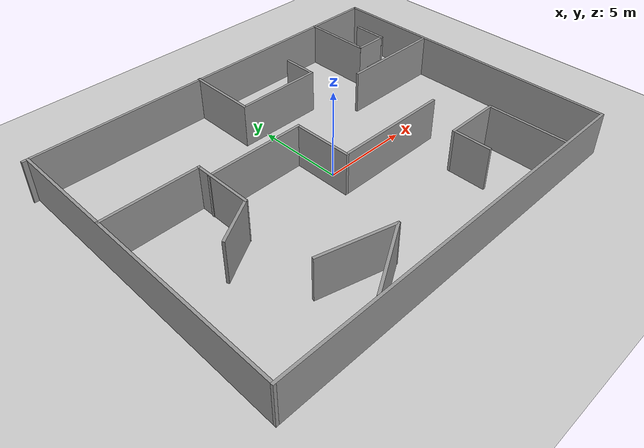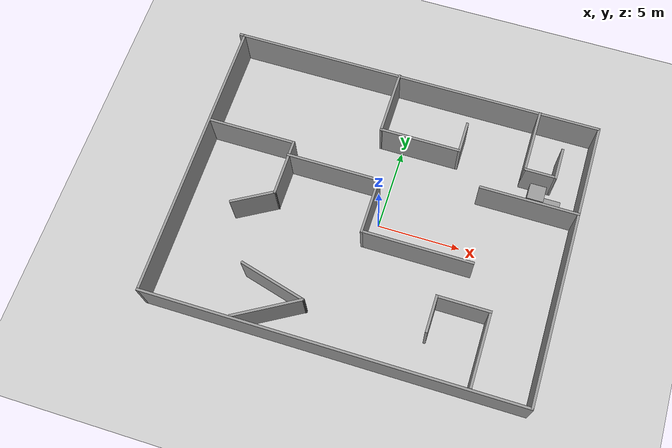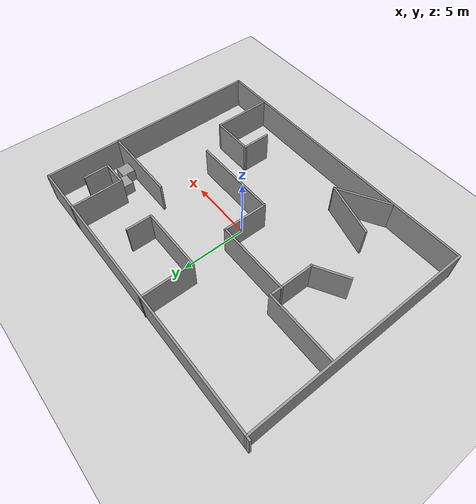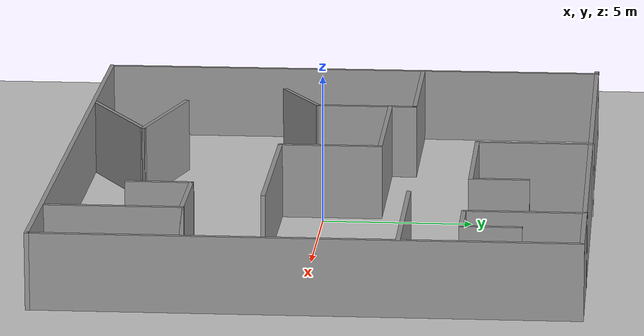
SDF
<sdf version="1.7">
 <world name="default">
  <light name="sun" type="directional">
   <pose>0 0 10 0 -0 0</pose>
   <diffuse>0.8 0.8 0.8 1</diffuse>
   <specular>0.2 0.2 0.2 1</specular>
   <attenuation>
    <range>1000</range>
    <constant>0.9</constant>
    <linear>0.01</linear>
    <quadratic>0.001</quadratic>
   </attenuation>
   <direction>-0.5 0.1 -0.9</direction>
   <spot><inner_angle>0</inner_angle><outer_angle>0</outer_angle><falloff>0</falloff></spot>
  </light>
  <model name="ground_plane">
   <static>1</static>
   <link name="link">
    <collision name="collision">
     <geometry><plane><normal>0 0 1</normal><size>100 100</size></plane></geometry>
     <surface><friction><ode><mu>100</mu><mu2>50</mu2></ode></friction></surface>
    </collision>
    <visual name="visual">
     <cast_shadows>0</cast_shadows>
     <geometry><plane><normal>0 0 1</normal><size>100 100</size></plane></geometry>
     <material>
      <script><uri>file://media/materials/scripts/gazebo.material</uri><name>Gazebo/Grey</name></script>
     </material>
    </visual>
   </link>
  </model>
  <gravity>0 0 -9.8</gravity>
  <magnetic_field>6e-06 2.3e-05 -4.2e-05</magnetic_field>
  <atmosphere type="adiabatic"/>
  <physics type="ode">
   <max_step_size>0.001</max_step_size>
   <real_time_factor>1</real_time_factor>
   <real_time_update_rate>1000</real_time_update_rate>
  </physics>
  <scene><ambient>0.4 0.4 0.4 1</ambient><background>0.7 0.7 0.7 1</background><shadows>1</shadows></scene>
  <audio><device>default</device></audio>
  <spherical_coordinates>
   <surface_model>EARTH_WGS84</surface_model>
   <latitude_deg>0</latitude_deg>
   <longitude_deg>0</longitude_deg>
   <elevation>0</elevation>
   <heading_deg>0</heading_deg>
  </spherical_coordinates>
  <model name="playground">
   <pose>-0.331229 0.25121 0 0 -0 0</pose>
   <link name="Wall_10">
    <collision name="Wall_10_Collision">
     <geometry><box><size>23 0.15 2.5</size></box></geometry>
     <pose>0 0 1.25 0 -0 0</pose>
    </collision>
    <visual name="Wall_10_Visual">
     <pose>0 0 1.25 0 -0 0</pose>
     <geometry><box><size>23 0.15 2.5</size></box></geometry>
     <material>
      <script><uri>file://media/materials/scripts/gazebo.material</uri><name>Gazebo/Grey</name></script>
      <ambient>1 1 1 1</ambient>
     </material>
     <meta><layer>0</layer></meta>
    </visual>
    <pose>-1e-06 8.65231 0 0 -0 0</pose>
   </link>
   <link name="Wall_11">
    <collision name="Wall_11_Collision">
     <geometry><box><size>17.5 0.15 2.5</size></box></geometry>
     <pose>0 0 1.25 0 -0 0</pose>
    </collision>
    <visual name="Wall_11_Visual">
     <pose>0 0 1.25 0 -0 0</pose>
     <geometry><box><size>17.5 0.15 2.5</size></box></geometry>
     <material>
      <script><uri>file://media/materials/scripts/gazebo.material</uri><name>Gazebo/Grey</name></script>
      <ambient>1 1 1 1</ambient>
     </material>
     <meta><layer>0</layer></meta>
    </visual>
    <pose>11.425 -0.022689 0 0 -0 -1.5708</pose>
   </link>
   <link name="Wall_12">
    <collision name="Wall_12_Collision">
     <geometry><box><size>22.75 0.15 2.5</size></box></geometry>
     <pose>0 0 1.25 0 -0 0</pose>
    </collision>
    <visual name="Wall_12_Visual">
     <pose>0 0 1.25 0 -0 0</pose>
     <geometry><box><size>22.75 0.15 2.5</size></box></geometry>
     <material>
      <script><uri>file://media/materials/scripts/gazebo.material</uri><name>Gazebo/Grey</name></script>
      <ambient>1 1 1 1</ambient>
     </material>
     <meta><layer>0</layer></meta>
    </visual>
    <pose>0.124999 -8.69769 0 0 -0 3.14159</pose>
   </link>
   <link name="Wall_13">
    <collision name="Wall_13_Collision">
     <geometry><box><size>17.5 0.15 2.5</size></box></geometry>
     <pose>0 0 1.25 0 -0 0</pose>
    </collision>
    <visual name="Wall_13_Visual">
     <pose>0 0 1.25 0 -0 0</pose>
     <geometry><box><size>17.5 0.15 2.5</size></box></geometry>
     <material>
      <script><uri>file://media/materials/scripts/gazebo.material</uri><name>Gazebo/Grey</name></script>
      <ambient>1 1 1 1</ambient>
     </material>
     <meta><layer>0</layer></meta>
    </visual>
    <pose>-11.175 -0.022689 0 0 -0 1.5708</pose>
   </link>
   <link name="Wall_15">
    <collision name="Wall_15_Collision">
     <geometry><box><size>4 0.15 2.5</size></box></geometry>
     <pose>0 0 1.25 0 -0 0</pose>
    </collision>
    <visual name="Wall_15_Visual">
     <pose>0 0 1.25 0 -0 0</pose>
     <geometry><box><size>4 0.15 2.5</size></box></geometry>
     <material>
      <script><uri>file://media/materials/scripts/gazebo.material</uri><name>Gazebo/Grey</name></script>
      <ambient>1 1 1 1</ambient>
     </material>
     <meta><layer>0</layer></meta>
    </visual>
    <pose>7.79704 6.73751 0 0 -0 -1.5708</pose>
   </link>
   <link name="Wall_16">
    <collision name="Wall_16_Collision">
     <geometry><box><size>2 0.15 2.5</size></box></geometry>
     <pose>0 0 1.25 0 -0 0</pose>
    </collision>
    <visual name="Wall_16_Visual">
     <pose>0 0 1.25 0 -0 0</pose>
     <geometry><box><size>2 0.15 2.5</size></box></geometry>
     <material>
      <script><uri>file://media/materials/scripts/gazebo.material</uri><name>Gazebo/Grey</name></script>
      <ambient>1 1 1 1</ambient>
     </material>
     <meta><layer>0</layer></meta>
    </visual>
    <pose>8.72204 4.81251 0 0 -0 0</pose>
   </link>
   <link name="Wall_17">
    <collision name="Wall_17_Collision">
     <geometry><box><size>2 0.15 2.5</size></box></geometry>
     <pose>0 0 1.25 0 -0 0</pose>
    </collision>
    <visual name="Wall_17_Visual">
     <pose>0 0 1.25 0 -0 0</pose>
     <geometry><box><size>2 0.15 2.5</size></box></geometry>
     <material>
      <script><uri>file://media/materials/scripts/gazebo.material</uri><name>Gazebo/Grey</name></script>
      <ambient>1 1 1 1</ambient>
     </material>
     <meta><layer>0</layer></meta>
    </visual>
    <pose>9.64704 5.73751 0 0 -0 1.5708</pose>
   </link>
   <link name="Wall_19">
    <collision name="Wall_19_Collision">
     <geometry><box><size>6 0.15 2.5</size></box></geometry>
     <pose>0 0 1.25 0 -0 0</pose>
    </collision>
    <visual name="Wall_19_Visual">
     <pose>0 0 1.25 0 -0 0</pose>
     <geometry><box><size>6 0.15 2.5</size></box></geometry>
     <material>
      <script><uri>file://media/materials/scripts/gazebo.material</uri><name>Gazebo/Grey</name></script>
      <ambient>1 1 1 1</ambient>
     </material>
     <meta><layer>0</layer></meta>
    </visual>
    <pose>8.49545 2.92837 0 0 -0 3.14159</pose>
   </link>
   <link name="Wall_23">
    <collision name="Wall_23_Collision">
     <geometry><box><size>4.5 0.15 2.5</size></box></geometry>
     <pose>0 0 1.25 0 -0 0</pose>
    </collision>
    <visual name="Wall_23_Visual">
     <pose>0 0 1.25 0 -0 0</pose>
     <geometry><box><size>4.5 0.15 2.5</size></box></geometry>
     <material>
      <script><uri>file://media/materials/scripts/gazebo.material</uri><name>Gazebo/Grey</name></script>
      <ambient>1 1 1 1</ambient>
     </material>
     <meta><layer>0</layer></meta>
    </visual>
    <pose>8.00811 -6.3649 0 0 -0 1.5708</pose>
   </link>
   <link name="Wall_24">
    <collision name="Wall_24_Collision">
     <geometry><box><size>3.25 0.15 2.5</size></box></geometry>
     <pose>0 0 1.25 0 -0 0</pose>
    </collision>
    <visual name="Wall_24_Visual">
     <pose>0 0 1.25 0 -0 0</pose>
     <geometry><box><size>3.25 0.15 2.5</size></box></geometry>
     <material>
      <script><uri>file://media/materials/scripts/gazebo.material</uri><name>Gazebo/Grey</name></script>
      <ambient>1 1 1 1</ambient>
     </material>
     <meta><layer>0</layer></meta>
    </visual>
    <pose>6.45811 -4.18991 0 0 -0 3.14159</pose>
   </link>
   <link name="Wall_25">
    <collision name="Wall_25_Collision">
     <geometry><box><size>2.25 0.15 2.5</size></box></geometry>
     <pose>0 0 1.25 0 -0 0</pose>
    </collision>
    <visual name="Wall_25_Visual">
     <pose>0 0 1.25 0 -0 0</pose>
     <geometry><box><size>2.25 0.15 2.5</size></box></geometry>
     <material>
      <script><uri>file://media/materials/scripts/gazebo.material</uri><name>Gazebo/Grey</name></script>
      <ambient>1 1 1 1</ambient>
     </material>
     <meta><layer>0</layer></meta>
    </visual>
    <pose>4.90811 -5.2399 0 0 -0 -1.5708</pose>
   </link>
   <link name="Wall_27">
    <collision name="Wall_27_Collision">
     <geometry><box><size>4 0.15 2.5</size></box></geometry>
     <pose>0 0 1.25 0 -0 0</pose>
    </collision>
    <visual name="Wall_27_Visual">
     <pose>0 0 1.25 0 -0 0</pose>
     <geometry><box><size>4 0.15 2.5</size></box></geometry>
     <material>
      <script><uri>file://media/materials/scripts/gazebo.material</uri><name>Gazebo/Grey</name></script>
      <ambient>1 1 1 1</ambient>
     </material>
     <meta><layer>0</layer></meta>
    </visual>
    <pose>-1.06801 6.77269 0 0 -0 -1.5708</pose>
   </link>
   <link name="Wall_28">
    <collision name="Wall_28_Collision">
     <geometry><box><size>5 0.15 2.5</size></box></geometry>
     <pose>0 0 1.25 0 -0 0</pose>
    </collision>
    <visual name="Wall_28_Visual">
     <pose>0 0 1.25 0 -0 0</pose>
     <geometry><box><size>5 0.15 2.5</size></box></geometry>
     <material>
      <script><uri>file://media/materials/scripts/gazebo.material</uri><name>Gazebo/Grey</name></script>
      <ambient>1 1 1 1</ambient>
     </material>
     <meta><layer>0</layer></meta>
    </visual>
    <pose>1.35699 4.84769 0 0 -0 0</pose>
   </link>
   <link name="Wall_29">
    <collision name="Wall_29_Collision">
     <geometry><box><size>2 0.15 2.5</size></box></geometry>
     <pose>0 0 1.25 0 -0 0</pose>
    </collision>
    <visual name="Wall_29_Visual">
     <pose>0 0 1.25 0 -0 0</pose>
     <geometry><box><size>2 0.15 2.5</size></box></geometry>
     <material>
      <script><uri>file://media/materials/scripts/gazebo.material</uri><name>Gazebo/Grey</name></script>
      <ambient>1 1 1 1</ambient>
     </material>
     <meta><layer>0</layer></meta>
    </visual>
    <pose>3.78199 5.77269 0 0 -0 1.5708</pose>
   </link>
   <link name="Wall_31">
    <collision name="Wall_31_Collision">
     <geometry><box><size>5.5 0.15 2.5</size></box></geometry>
     <pose>0 0 1.25 0 -0 0</pose>
    </collision>
    <visual name="Wall_31_Visual">
     <pose>0 0 1.25 0 -0 0</pose>
     <geometry><box><size>5.5 0.15 2.5</size></box></geometry>
     <material>
      <script><uri>file://media/materials/scripts/gazebo.material</uri><name>Gazebo/Grey</name></script>
      <ambient>1 1 1 1</ambient>
     </material>
     <meta><layer>0</layer></meta>
    </visual>
    <pose>-8.48932 2.47105 0 0 -0 0</pose>
   </link>
   <link name="Wall_32">
    <collision name="Wall_32_Collision">
     <geometry><box><size>3.5 0.15 2.5</size></box></geometry>
     <pose>0 0 1.25 0 -0 0</pose>
    </collision>
    <visual name="Wall_32_Visual">
     <pose>0 0 1.25 0 -0 0</pose>
     <geometry><box><size>3.5 0.15 2.5</size></box></geometry>
     <material>
      <script><uri>file://media/materials/scripts/gazebo.material</uri><name>Gazebo/Grey</name></script>
      <ambient>1 1 1 1</ambient>
     </material>
     <meta><layer>0</layer></meta>
    </visual>
    <pose>-5.81431 0.796048 0 0 -0 -1.5708</pose>
   </link>
   <link name="Wall_33">
    <collision name="Wall_33_Collision">
     <geometry><box><size>2.75 0.15 2.5</size></box></geometry>
     <pose>0 0 1.25 0 -0 0</pose>
    </collision>
    <visual name="Wall_33_Visual">
     <pose>0 0 1.25 0 -0 0</pose>
     <geometry><box><size>2.75 0.15 2.5</size></box></geometry>
     <material>
      <script><uri>file://media/materials/scripts/gazebo.material</uri><name>Gazebo/Grey</name></script>
      <ambient>1 1 1 1</ambient>
     </material>
     <meta><layer>0</layer></meta>
    </visual>
    <pose>-6.94015 -1.52895 0 0 -0 -2.61799</pose>
   </link>
   <link name="Wall_35">
    <collision name="Wall_35_Collision">
     <geometry><box><size>4.25 0.15 2.5</size></box></geometry>
     <pose>0 0 1.25 0 -0 0</pose>
    </collision>
    <visual name="Wall_35_Visual">
     <pose>0 0 1.25 0 -0 0</pose>
     <geometry><box><size>4.25 0.15 2.5</size></box></geometry>
     <material>
      <script><uri>file://media/materials/scripts/gazebo.material</uri><name>Gazebo/Grey</name></script>
      <ambient>1 1 1 1</ambient>
     </material>
     <meta><layer>0</layer></meta>
    </visual>
    <pose>-3.93626 -7.58526 0 0 -0 0.523599</pose>
   </link>
   <link name="Wall_36">
    <collision name="Wall_36_Collision">
     <geometry><box><size>4.25 0.15 2.5</size></box></geometry>
     <pose>0 0 1.25 0 -0 0</pose>
    </collision>
    <visual name="Wall_36_Visual">
     <pose>0 0 1.25 0 -0 0</pose>
     <geometry><box><size>4.25 0.15 2.5</size></box></geometry>
     <material>
      <script><uri>file://media/materials/scripts/gazebo.material</uri><name>Gazebo/Grey</name></script>
      <ambient>1 1 1 1</ambient>
     </material>
     <meta><layer>0</layer></meta>
    </visual>
    <pose>-4.14105 -6.02968 0 0 -0 2.87979</pose>
   </link>
   <link name="Wall_39">
    <collision name="Wall_39_Collision">
     <geometry><box><size>5.75 0.15 2.5</size></box></geometry>
     <pose>0 0 1.25 0 -0 0</pose>
    </collision>
    <visual name="Wall_39_Visual">
     <pose>0 0 1.25 0 -0 0</pose>
     <geometry><box><size>5.75 0.15 2.5</size></box></geometry>
     <material>
      <script><uri>file://media/materials/scripts/gazebo.material</uri><name>Gazebo/Grey</name></script>
      <ambient>1 1 1 1</ambient>
     </material>
     <meta><layer>0</layer></meta>
    </visual>
    <pose>-3.05232 1.62676 0 0 -0 0</pose>
   </link>
   <link name="Wall_40">
    <collision name="Wall_40_Collision">
     <geometry><box><size>3.5 0.15 2.5</size></box></geometry>
     <pose>0 0 1.25 0 -0 0</pose>
    </collision>
    <visual name="Wall_40_Visual">
     <pose>0 0 1.25 0 -0 0</pose>
     <geometry><box><size>3.5 0.15 2.5</size></box></geometry>
     <material>
      <script><uri>file://media/materials/scripts/gazebo.material</uri><name>Gazebo/Grey</name></script>
      <ambient>1 1 1 1</ambient>
     </material>
     <meta><layer>0</layer></meta>
    </visual>
    <pose>-0.252322 -0.048242 0 0 -0 -1.5708</pose>
   </link>
   <link name="Wall_41">
    <collision name="Wall_41_Collision">
     <geometry><box><size>6.75 0.15 2.5</size></box></geometry>
     <pose>0 0 1.25 0 -0 0</pose>
    </collision>
    <visual name="Wall_41_Visual">
     <pose>0 0 1.25 0 -0 0</pose>
     <geometry><box><size>6.75 0.15 2.5</size></box></geometry>
     <material>
      <script><uri>file://media/materials/scripts/gazebo.material</uri><name>Gazebo/Grey</name></script>
      <ambient>1 1 1 1</ambient>
     </material>
     <meta><layer>0</layer></meta>
    </visual>
    <pose>3.04768 -1.72324 0 0 -0 0</pose>
   </link>
   <static>1</static>
  </model>
  <model name="unit_box">
   <pose>9.55845 3.76107 0.499995 1e-05 -0 0.001559</pose>
   <link name="link">
    <inertial>
     <mass>1</mass>
     <inertia>
      <ixx>0.166667</ixx>
      <ixy>0</ixy>
      <ixz>0</ixz>
      <iyy>0.166667</iyy>
      <iyz>0</iyz>
      <izz>0.166667</izz>
     </inertia>
    </inertial>
    <collision name="collision"><geometry><box><size>1 1 1</size></box></geometry></collision>
    <visual name="visual">
     <geometry><box><size>1 1 1</size></box></geometry>
     <material>
      <script><name>Gazebo/Grey</name><uri>file://media/materials/scripts/gazebo.material</uri></script>
     </material>
    </visual>
   </link>
  </model>
  <model name="unit_box_0">
   <pose>8.55428 4.48715 0.499995 0 1e-05 0</pose>
   <link name="link">
    <inertial>
     <mass>1</mass>
     <inertia>
      <ixx>0.166667</ixx>
      <ixy>0</ixy>
      <ixz>0</ixz>
      <iyy>0.166667</iyy>
      <iyz>0</iyz>
      <izz>0.166667</izz>
     </inertia>
    </inertial>
    <collision name="collision"><geometry><box><size>1 1 1</size></box></geometry></collision>
    <visual name="visual">
     <geometry><box><size>1 1 1</size></box></geometry>
     <material>
      <script><name>Gazebo/Grey</name><uri>file://media/materials/scripts/gazebo.material</uri></script>
     </material>
    </visual>
   </link>
  </model>
 </world>
</sdf>
